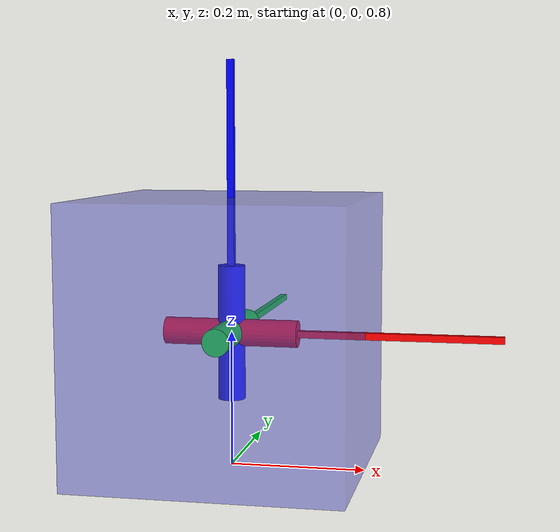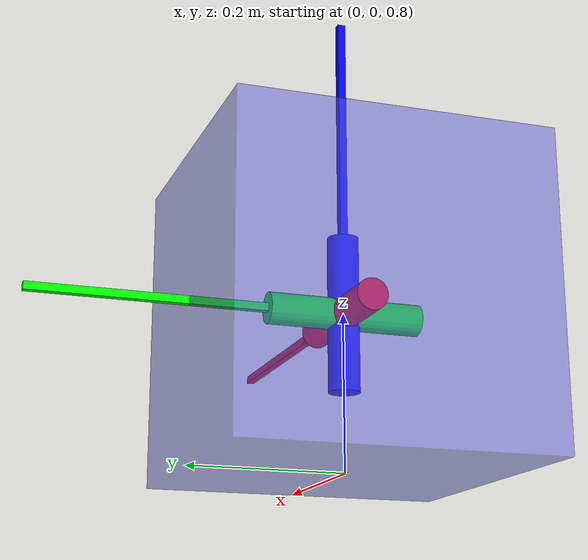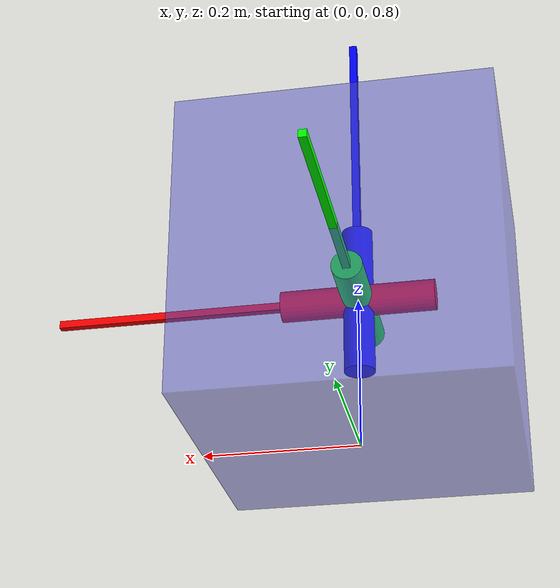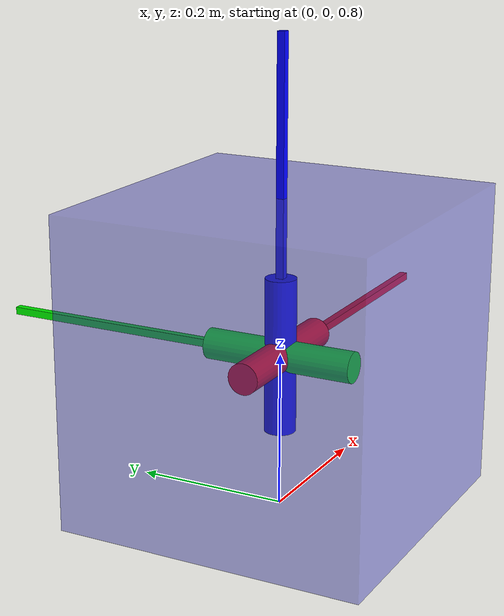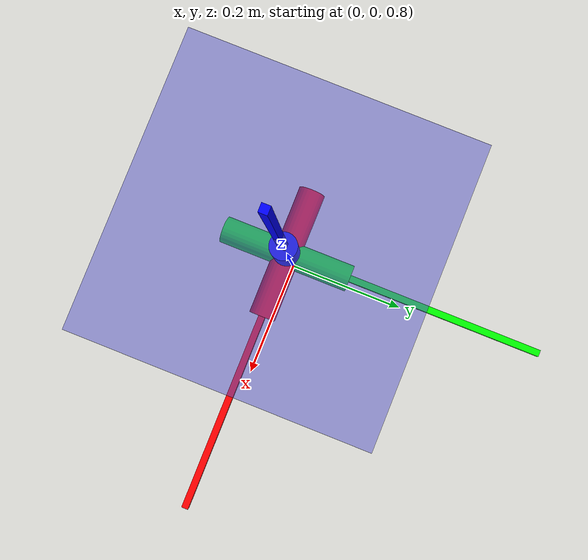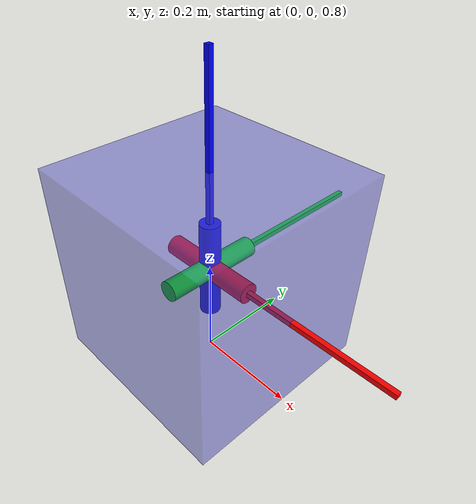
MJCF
<!--
Simple Thrustbox models are a 6 dimension action models
-->
<mujoco model="simplethrustboxt0">
	<compiler angle="degree" coordinate="local" inertiafromgeom="true"/>
	<option timestep="0.01" gravity="0 0 0" density="1" viscosity="0" integrator="RK4"/>
	<visual>
		<map force="0.1" zfar="30"/>
		<rgba haze="0.15 0.25 0.35 1"/>
		<global offwidth="2560" offheight="1440" elevation="-20" azimuth="120"/>
	</visual>
	<default>
		<joint armature="1" damping="1" limited="true"/>
		<geom conaffinity="1" condim="1" density="5.0" friction="1 0.5 0.5" margin="0.01" rgba="0.8 0.6 0.4 1"/>
		<default class="shoulder">
			<joint pos="0.0 0.0 0.0" stiffness="100" range="30 70" springref="70"/>
		</default>
		<default class="armgeom">
			<geom size="0.08" type="capsule" rgba="1 .6 0 1"/>
		</default>
		<default class="elbow">
			<joint pos="0.0 0.0 0.0" stiffness="100" range="30 70" springref="70"/>
		</default>
		<default class="thruster">
			<site type="cylinder" size="0.02 0.05" rgba="0.3 0.8 0.3 1" quat="1.0 0.0 0.0 0."/>
		</default>
	</default>
	<asset>
		<texture type="skybox" builtin="gradient" rgb1=".3 .5 .7" rgb2="0 0 0" width="32" height="512"/>
	</asset>
	<worldbody>
		<!-- Satellite -->
		<body name="box" pos="0 0 1">
			<geom name="core" pos="0 0 0" quat="1 0 0 0" size=".2 .2 .2" type="box" rgba="0.3 0.3 0.8 .5" mass=".1"/>
			<joint name="root" type="free" damping="0" armature="0" pos="0 0 0"/>
			<site name="IMUmount" pos="0.0 0.0 0.0" type="sphere" size="0.02" quat="1.0 0.0 0.0 0." rgba="1 1 1 1"/>

			<!-- thruster colors determined by xyz->rgb where +x,+y,+z is r=1,b=1,g=1 and -x,-y,-z is r=0,b=0,g=0 -->
			<!-- Thruster geoms -->
			<site name="motorX" fromto="-.1  .0  .0  .1  .0  .0" class="thruster" rgba="1 0 0 1"/>
			<site name="motorY" fromto=" .0 -.1  .0  .0  .1  .0" class="thruster" rgba="0 1 0 1"/>
			<site name="motorZ" fromto=" .0  .0 -.1  .0  .0  .1" class="thruster" rgba="0 0 1 1"/>

			<!-- Visualization of the coordinate frame-->
			<site name="qcX" type="box" pos="0.2 0.0 0.0" size="0.2 0.005 0.005" quat=" 1.000  0.0  0.0    0." rgba="1 0 0 1"/>
			<site name="qcY" type="box" pos="0.0 0.2 0.0" size="0.2 0.005 0.005" quat=" 0.707  0.0  0.0    0.707" rgba="0 1 0 1"/>
			<site name="qcZ" type="box" pos="0.0 0.0 0.2" size="0.2 0.005 0.005" quat="-0.707  0.0  0.707  0." rgba="0 0 1 1"/>

		</body>

	</worldbody>
	<actuator>
		<motor name="ThrusterX" ctrllimited="true" ctrlrange="-1. 1.0" gear=".0  .0 -.2  0. 0. 0." site="motorX"/>
		<motor name="ThrusterY" ctrllimited="true" ctrlrange="-1. 1.0" gear=".0  .0 -.2  0. 0. 0." site="motorY"/>
		<motor name="ThrusterZ" ctrllimited="true" ctrlrange="-1. 1.0" gear=".0  .0 -.2  0. 0. 0." site="motorZ"/>

		<motor name="ReactX" ctrllimited="true" ctrlrange="-1. 1.0" gear=".0  .0 .0  0. 0. -.04" site="motorX"/>
		<motor name="ReactY" ctrllimited="true" ctrlrange="-1. 1.0" gear=".0  .0 .0  0. 0. -.04" site="motorY"/>
		<motor name="ReactZ" ctrllimited="true" ctrlrange="-1. 1.0" gear=".0  .0 .0  0. 0. -.04" site="motorZ"/>
	</actuator>

	<sensor>
		<accelerometer name="accel" site = "IMUmount"/>
		<gyro name="gyro" site = "IMUmount"/>
	</sensor>
</mujoco>
